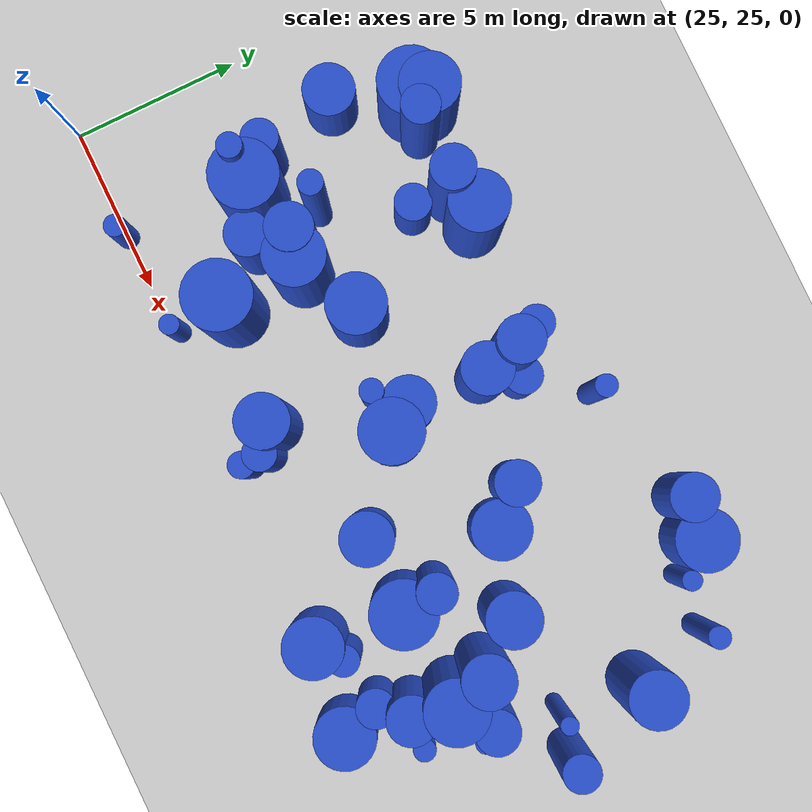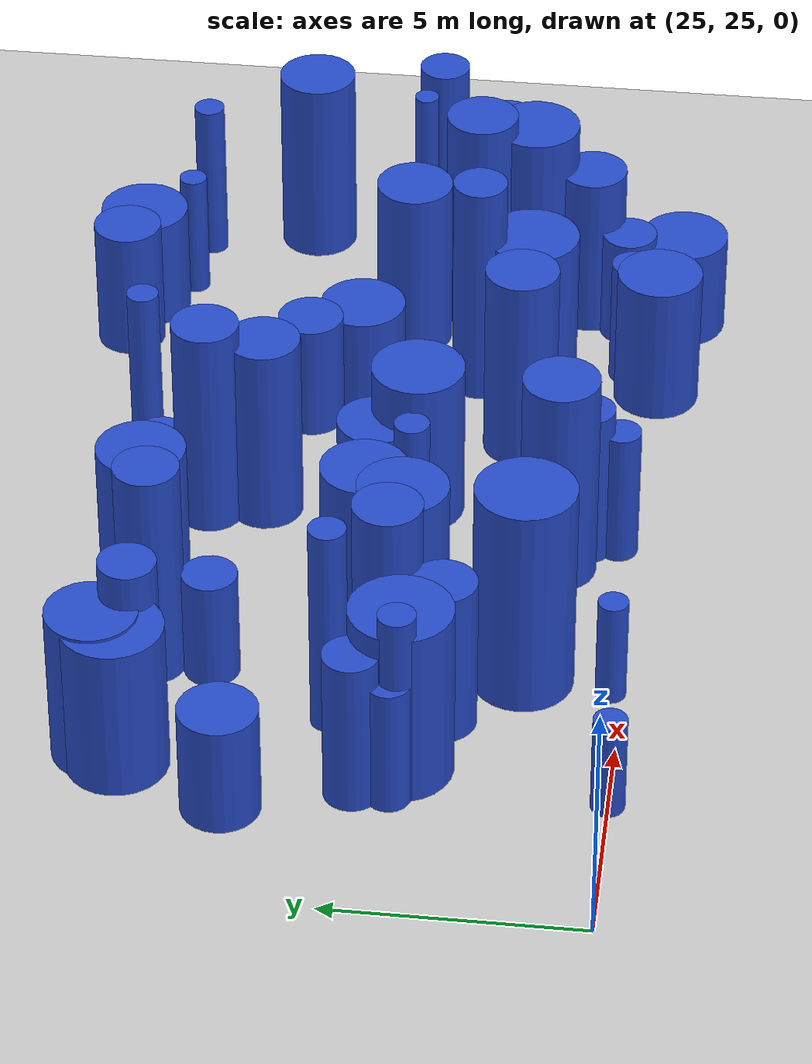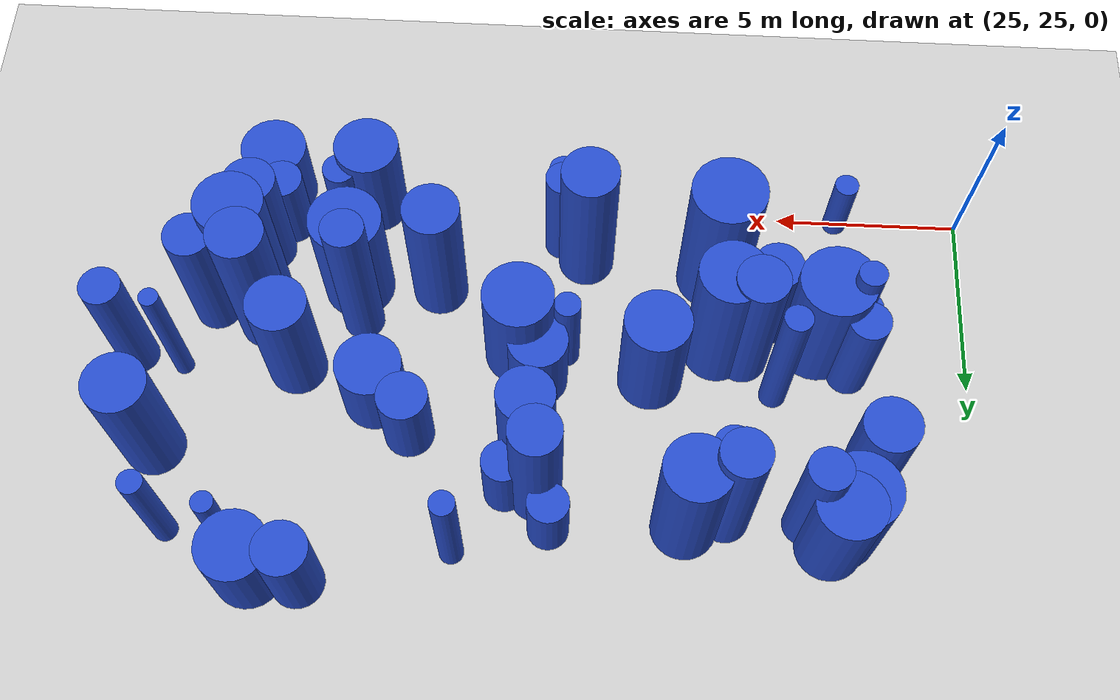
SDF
<sdf version="1.6">
 <world name="default">
  <model name="ground_plane">
   <static>1</static>
   <link name="link">
    <collision name="collision">
     <geometry><plane><normal>0 0 1</normal><size>100 100</size></plane></geometry>
     <surface><friction><ode><mu>100</mu><mu2>50</mu2></ode></friction></surface>
    </collision>
    <visual name="visual">
     <cast_shadows>0</cast_shadows>
     <geometry><plane><normal>0 0 1</normal><size>100 100</size></plane></geometry>
     <material>
      <script><uri>file://media/materials/scripts/gazebo.material</uri><name>Gazebo/Grey</name></script>
     </material>
    </visual>
   </link>
  </model>
  <model name="1">
   <static>0</static>
   <link name="link">
    <inertial>
     <mass>2</mass>
     <inertia><ixx>1.42291</ixx><ixy>0</ixy><ixz>0</ixz><iyy>1.42291</iyy><iyz>0</iyz><izz>0.128584</izz></inertia>
    </inertial>
    <collision name="collision">
     <geometry><cylinder><length>2.85512</length><radius>0.358586</radius></cylinder></geometry>
     <surface><contact><collide_without_contact>1</collide_without_contact></contact></surface>
    </collision>
    <visual name="visual">
     <geometry><cylinder><length>2.85512</length><radius>0.358586</radius></cylinder></geometry>
     <material>
      <script><uri>file://media/materials/scripts/gazebo.material</uri><name>Gazebo/Blue</name></script>
     </material>
    </visual>
    <gravity>0</gravity>
   </link>
   <pose>41.7752 27.9235 1.42756 0 -0 0</pose>
  </model>
  <model name="13">
   <static>0</static>
   <link name="link">
    <inertial>
     <mass>2</mass>
     <inertia><ixx>1.9703</ixx><ixy>0</ixy><ixz>0</ixz><iyy>1.9703</iyy><iyz>0</iyz><izz>0.2914</izz></inertia>
    </inertial>
    <collision name="collision">
     <geometry><cylinder><length>3.30871</length><radius>0.539815</radius></cylinder></geometry>
     <surface><contact><collide_without_contact>1</collide_without_contact></contact></surface>
    </collision>
    <visual name="visual">
     <geometry><cylinder><length>3.30871</length><radius>0.539815</radius></cylinder></geometry>
     <material>
      <script><uri>file://media/materials/scripts/gazebo.material</uri><name>Gazebo/Blue</name></script>
     </material>
    </visual>
    <gravity>0</gravity>
   </link>
   <pose>28.2282 29.745 1.65436 0 -0 0</pose>
  </model>
  <model name="20">
   <static>0</static>
   <link name="link">
    <inertial>
     <mass>2</mass>
     <inertia><ixx>2.14927</ixx><ixy>0</ixy><ixz>0</ixz><iyy>2.14927</iyy><iyz>0</iyz><izz>0.10024</izz></inertia>
    </inertial>
    <collision name="collision">
     <geometry><cylinder><length>3.54893</length><radius>0.316606</radius></cylinder></geometry>
     <surface><contact><collide_without_contact>1</collide_without_contact></contact></surface>
    </collision>
    <visual name="visual">
     <geometry><cylinder><length>3.54893</length><radius>0.316606</radius></cylinder></geometry>
     <material>
      <script><uri>file://media/materials/scripts/gazebo.material</uri><name>Gazebo/Blue</name></script>
     </material>
    </visual>
    <gravity>0</gravity>
   </link>
   <pose>45.8173 35.0316 1.77447 0 -0 0</pose>
  </model>
  <model name="21">
   <static>0</static>
   <link name="link">
    <inertial>
     <mass>2</mass>
     <inertia><ixx>2.07639</ixx><ixy>0</ixy><ixz>0</ixz><iyy>2.07639</iyy><iyz>0</iyz><izz>0.241004</izz></inertia>
    </inertial>
    <collision name="collision">
     <geometry><cylinder><length>3.42569</length><radius>0.490922</radius></cylinder></geometry>
     <surface><contact><collide_without_contact>1</collide_without_contact></contact></surface>
    </collision>
    <visual name="visual">
     <geometry><cylinder><length>3.42569</length><radius>0.490922</radius></cylinder></geometry>
     <material>
      <script><uri>file://media/materials/scripts/gazebo.material</uri><name>Gazebo/Blue</name></script>
     </material>
    </visual>
    <gravity>0</gravity>
   </link>
   <pose>36.0554 26.0454 1.71284 0 -0 0</pose>
  </model>
  <model name="32">
   <static>0</static>
   <link name="link">
    <inertial>
     <mass>2</mass>
     <inertia><ixx>4.32118</ixx><ixy>0</ixy><ixz>0</ixz><iyy>4.32118</iyy><iyz>0</iyz><izz>0.545109</izz></inertia>
    </inertial>
    <collision name="collision">
     <geometry><cylinder><length>4.92867</length><radius>0.738315</radius></cylinder></geometry>
     <surface><contact><collide_without_contact>1</collide_without_contact></contact></surface>
    </collision>
    <visual name="visual">
     <geometry><cylinder><length>4.92867</length><radius>0.738315</radius></cylinder></geometry>
     <material>
      <script><uri>file://media/materials/scripts/gazebo.material</uri><name>Gazebo/Blue</name></script>
     </material>
    </visual>
    <gravity>0</gravity>
   </link>
   <pose>43.9927 28.992 2.46433 0 -0 0</pose>
  </model>
  <model name="35">
   <static>0</static>
   <link name="link">
    <inertial>
     <mass>2</mass>
     <inertia>
      <ixx>1.30378</ixx>
      <ixy>0</ixy>
      <ixz>0</ixz>
      <iyy>1.30378</iyy>
      <iyz>0</iyz>
      <izz>0.0818979</izz>
     </inertia>
    </inertial>
    <collision name="collision">
     <geometry><cylinder><length>2.75264</length><radius>0.286178</radius></cylinder></geometry>
     <surface><contact><collide_without_contact>1</collide_without_contact></contact></surface>
    </collision>
    <visual name="visual">
     <geometry><cylinder><length>2.75264</length><radius>0.286178</radius></cylinder></geometry>
     <material>
      <script><uri>file://media/materials/scripts/gazebo.material</uri><name>Gazebo/Blue</name></script>
     </material>
    </visual>
    <gravity>0</gravity>
   </link>
   <pose>44.2744 35.1639 1.37632 0 -0 0</pose>
  </model>
  <model name="48">
   <static>0</static>
   <link name="link">
    <inertial>
     <mass>2</mass>
     <inertia><ixx>1.60895</ixx><ixy>0</ixy><ixz>0</ixz><iyy>1.60895</iyy><iyz>0</iyz><izz>0.100304</izz></inertia>
    </inertial>
    <collision name="collision">
     <geometry><cylinder><length>3.05823</length><radius>0.316709</radius></cylinder></geometry>
     <surface><contact><collide_without_contact>1</collide_without_contact></contact></surface>
    </collision>
    <visual name="visual">
     <geometry><cylinder><length>3.05823</length><radius>0.316709</radius></cylinder></geometry>
     <material>
      <script><uri>file://media/materials/scripts/gazebo.material</uri><name>Gazebo/Blue</name></script>
     </material>
    </visual>
    <gravity>0</gravity>
   </link>
   <pose>45.1707 26.6144 1.52911 0 -0 0</pose>
  </model>
  <model name="53">
   <static>0</static>
   <link name="link">
    <inertial>
     <mass>2</mass>
     <inertia><ixx>3.78116</ixx><ixy>0</ixy><ixz>0</ixz><iyy>3.78116</iyy><iyz>0</iyz><izz>0.58004</izz></inertia>
    </inertial>
    <collision name="collision">
     <geometry><cylinder><length>4.57677</length><radius>0.761604</radius></cylinder></geometry>
     <surface><contact><collide_without_contact>1</collide_without_contact></contact></surface>
    </collision>
    <visual name="visual">
     <geometry><cylinder><length>4.57677</length><radius>0.761604</radius></cylinder></geometry>
     <material>
      <script><uri>file://media/materials/scripts/gazebo.material</uri><name>Gazebo/Blue</name></script>
     </material>
    </visual>
    <gravity>0</gravity>
   </link>
   <pose>35.376 26.5708 2.28839 0 -0 0</pose>
  </model>
  <model name="63">
   <static>0</static>
   <link name="link">
    <inertial>
     <mass>2</mass>
     <inertia><ixx>3.52604</ixx><ixy>0</ixy><ixz>0</ixz><iyy>3.52604</iyy><iyz>0</iyz><izz>0.741918</izz></inertia>
    </inertial>
    <collision name="collision">
     <geometry><cylinder><length>4.35092</length><radius>0.861346</radius></cylinder></geometry>
     <surface><contact><collide_without_contact>1</collide_without_contact></contact></surface>
    </collision>
    <visual name="visual">
     <geometry><cylinder><length>4.35092</length><radius>0.861346</radius></cylinder></geometry>
     <material>
      <script><uri>file://media/materials/scripts/gazebo.material</uri><name>Gazebo/Blue</name></script>
     </material>
    </visual>
    <gravity>0</gravity>
   </link>
   <pose>32.5729 34.2745 2.17546 0 -0 0</pose>
  </model>
  <model name="76">
   <static>0</static>
   <link name="link">
    <inertial>
     <mass>2</mass>
     <inertia><ixx>2.90704</ixx><ixy>0</ixy><ixz>0</ixz><iyy>2.90704</iyy><iyz>0</iyz><izz>0.308433</izz></inertia>
    </inertial>
    <collision name="collision">
     <geometry><cylinder><length>4.0641</length><radius>0.555368</radius></cylinder></geometry>
     <surface><contact><collide_without_contact>1</collide_without_contact></contact></surface>
    </collision>
    <visual name="visual">
     <geometry><cylinder><length>4.0641</length><radius>0.555368</radius></cylinder></geometry>
     <material>
      <script><uri>file://media/materials/scripts/gazebo.material</uri><name>Gazebo/Blue</name></script>
     </material>
    </visual>
    <gravity>0</gravity>
   </link>
   <pose>29.4935 34.03 2.03205 0 -0 0</pose>
  </model>
  <model name="79">
   <static>0</static>
   <link name="link">
    <inertial>
     <mass>2</mass>
     <inertia><ixx>1.49288</ixx><ixy>0</ixy><ixz>0</ixz><iyy>1.49288</iyy><iyz>0</iyz><izz>0.148529</izz></inertia>
    </inertial>
    <collision name="collision">
     <geometry><cylinder><length>2.91748</length><radius>0.385395</radius></cylinder></geometry>
     <surface><contact><collide_without_contact>1</collide_without_contact></contact></surface>
    </collision>
    <visual name="visual">
     <geometry><cylinder><length>2.91748</length><radius>0.385395</radius></cylinder></geometry>
     <material>
      <script><uri>file://media/materials/scripts/gazebo.material</uri><name>Gazebo/Blue</name></script>
     </material>
    </visual>
    <gravity>0</gravity>
   </link>
   <pose>36.0862 25.4242 1.45874 0 -0 0</pose>
  </model>
  <model name="80">
   <static>0</static>
   <link name="link">
    <inertial>
     <mass>2</mass>
     <inertia><ixx>3.80086</ixx><ixy>0</ixy><ixz>0</ixz><iyy>3.80086</iyy><iyz>0</iyz><izz>0.77804</izz></inertia>
    </inertial>
    <collision name="collision">
     <geometry><cylinder><length>4.52449</length><radius>0.882066</radius></cylinder></geometry>
     <surface><contact><collide_without_contact>1</collide_without_contact></contact></surface>
    </collision>
    <visual name="visual">
     <geometry><cylinder><length>4.52449</length><radius>0.882066</radius></cylinder></geometry>
     <material>
      <script><uri>file://media/materials/scripts/gazebo.material</uri><name>Gazebo/Blue</name></script>
     </material>
    </visual>
    <gravity>0</gravity>
   </link>
   <pose>31.7605 29.2102 2.26225 0 -0 0</pose>
  </model>
  <model name="87">
   <static>0</static>
   <link name="link">
    <inertial>
     <mass>2</mass>
     <inertia><ixx>1.2223</ixx><ixy>0</ixy><ixz>0</ixz><iyy>1.2223</iyy><iyz>0</iyz><izz>0.801071</izz></inertia>
    </inertial>
    <collision name="collision">
     <geometry><cylinder><length>2.2205</length><radius>0.895026</radius></cylinder></geometry>
     <surface><contact><collide_without_contact>1</collide_without_contact></contact></surface>
    </collision>
    <visual name="visual">
     <geometry><cylinder><length>2.2205</length><radius>0.895026</radius></cylinder></geometry>
     <material>
      <script><uri>file://media/materials/scripts/gazebo.material</uri><name>Gazebo/Blue</name></script>
     </material>
    </visual>
    <gravity>0</gravity>
   </link>
   <pose>44.0898 24.707 1.11025 0 -0 0</pose>
  </model>
  <model name="91">
   <static>0</static>
   <link name="link">
    <inertial>
     <mass>2</mass>
     <inertia>
      <ixx>0.882223</ixx>
      <ixy>0</ixy>
      <ixz>0</ixz>
      <iyy>0.882223</iyy>
      <iyz>0</iyz>
      <izz>0.0874614</izz>
     </inertia>
    </inertial>
    <collision name="collision">
     <geometry><cylinder><length>2.24298</length><radius>0.295739</radius></cylinder></geometry>
     <surface><contact><collide_without_contact>1</collide_without_contact></contact></surface>
    </collision>
    <visual name="visual">
     <geometry><cylinder><length>2.24298</length><radius>0.295739</radius></cylinder></geometry>
     <material>
      <script><uri>file://media/materials/scripts/gazebo.material</uri><name>Gazebo/Blue</name></script>
     </material>
    </visual>
    <gravity>0</gravity>
   </link>
   <pose>31.6263 25.2196 1.12149 0 -0 0</pose>
  </model>
  <model name="96">
   <static>0</static>
   <link name="link">
    <inertial>
     <mass>2</mass>
     <inertia><ixx>2.87652</ixx><ixy>0</ixy><ixz>0</ixz><iyy>2.87652</iyy><iyz>0</iyz><izz>0.99004</izz></inertia>
    </inertial>
    <collision name="collision">
     <geometry><cylinder><length>3.78008</length><radius>0.995008</radius></cylinder></geometry>
     <surface><contact><collide_without_contact>1</collide_without_contact></contact></surface>
    </collision>
    <visual name="visual">
     <geometry><cylinder><length>3.78008</length><radius>0.995008</radius></cylinder></geometry>
     <material>
      <script><uri>file://media/materials/scripts/gazebo.material</uri><name>Gazebo/Blue</name></script>
     </material>
    </visual>
    <gravity>0</gravity>
   </link>
   <pose>29.0539 28.9243 1.89004 0 -0 0</pose>
  </model>
  <model name="104">
   <static>0</static>
   <link name="link">
    <inertial>
     <mass>2</mass>
     <inertia><ixx>3.9165</ixx><ixy>0</ixy><ixz>0</ixz><iyy>3.9165</iyy><iyz>0</iyz><izz>0.40346</izz></inertia>
    </inertial>
    <collision name="collision">
     <geometry><cylinder><length>4.72108</length><radius>0.635185</radius></cylinder></geometry>
     <surface><contact><collide_without_contact>1</collide_without_contact></contact></surface>
    </collision>
    <visual name="visual">
     <geometry><cylinder><length>4.72108</length><radius>0.635185</radius></cylinder></geometry>
     <material>
      <script><uri>file://media/materials/scripts/gazebo.material</uri><name>Gazebo/Blue</name></script>
     </material>
    </visual>
    <gravity>0</gravity>
   </link>
   <pose>31.5272 33.9944 2.36054 0 -0 0</pose>
  </model>
  <model name="117">
   <static>0</static>
   <link name="link">
    <inertial>
     <mass>2</mass>
     <inertia><ixx>3.83077</ixx><ixy>0</ixy><ixz>0</ixz><iyy>3.83077</iyy><iyz>0</iyz><izz>0.816156</izz></inertia>
    </inertial>
    <collision name="collision">
     <geometry><cylinder><length>4.53168</length><radius>0.903414</radius></cylinder></geometry>
     <surface><contact><collide_without_contact>1</collide_without_contact></contact></surface>
    </collision>
    <visual name="visual">
     <geometry><cylinder><length>4.53168</length><radius>0.903414</radius></cylinder></geometry>
     <material>
      <script><uri>file://media/materials/scripts/gazebo.material</uri><name>Gazebo/Blue</name></script>
     </material>
    </visual>
    <gravity>0</gravity>
   </link>
   <pose>44.4012 27.9009 2.26584 0 -0 0</pose>
  </model>
  <model name="138">
   <static>0</static>
   <link name="link">
    <inertial>
     <mass>2</mass>
     <inertia><ixx>3.16834</ixx><ixy>0</ixy><ixz>0</ixz><iyy>3.16834</iyy><iyz>0</iyz><izz>0.64621</izz></inertia>
    </inertial>
    <collision name="collision">
     <geometry><cylinder><length>4.13176</length><radius>0.803872</radius></cylinder></geometry>
     <surface><contact><collide_without_contact>1</collide_without_contact></contact></surface>
    </collision>
    <visual name="visual">
     <geometry><cylinder><length>4.13176</length><radius>0.803872</radius></cylinder></geometry>
     <material>
      <script><uri>file://media/materials/scripts/gazebo.material</uri><name>Gazebo/Blue</name></script>
     </material>
    </visual>
    <gravity>0</gravity>
   </link>
   <pose>46.4667 32.7789 2.06588 0 -0 0</pose>
  </model>
  <model name="140">
   <static>0</static>
   <link name="link">
    <inertial>
     <mass>2</mass>
     <inertia><ixx>3.96038</ixx><ixy>0</ixy><ixz>0</ixz><iyy>3.96038</iyy><iyz>0</iyz><izz>0.962462</izz></inertia>
    </inertial>
    <collision name="collision">
     <geometry><cylinder><length>4.5689</length><radius>0.981051</radius></cylinder></geometry>
     <surface><contact><collide_without_contact>1</collide_without_contact></contact></surface>
    </collision>
    <visual name="visual">
     <geometry><cylinder><length>4.5689</length><radius>0.981051</radius></cylinder></geometry>
     <material>
      <script><uri>file://media/materials/scripts/gazebo.material</uri><name>Gazebo/Blue</name></script>
     </material>
    </visual>
    <gravity>0</gravity>
   </link>
   <pose>31.8637 26.9192 2.28445 0 -0 0</pose>
  </model>
  <model name="162">
   <static>0</static>
   <link name="link">
    <inertial>
     <mass>2</mass>
     <inertia><ixx>2.49064</ixx><ixy>0</ixy><ixz>0</ixz><iyy>2.49064</iyy><iyz>0</iyz><izz>0.753027</izz></inertia>
    </inertial>
    <collision name="collision">
     <geometry><cylinder><length>3.56157</length><radius>0.867771</radius></cylinder></geometry>
     <surface><contact><collide_without_contact>1</collide_without_contact></contact></surface>
    </collision>
    <visual name="visual">
     <geometry><cylinder><length>3.56157</length><radius>0.867771</radius></cylinder></geometry>
     <material>
      <script><uri>file://media/materials/scripts/gazebo.material</uri><name>Gazebo/Blue</name></script>
     </material>
    </visual>
    <gravity>0</gravity>
   </link>
   <pose>33.5253 30.1542 1.78078 0 -0 0</pose>
  </model>
  <model name="181">
   <static>0</static>
   <link name="link">
    <inertial>
     <mass>2</mass>
     <inertia><ixx>1.37707</ixx><ixy>0</ixy><ixz>0</ixz><iyy>1.37707</iyy><iyz>0</iyz><izz>0.203434</izz></inertia>
    </inertial>
    <collision name="collision">
     <geometry><cylinder><length>2.76625</length><radius>0.451036</radius></cylinder></geometry>
     <surface><contact><collide_without_contact>1</collide_without_contact></contact></surface>
    </collision>
    <visual name="visual">
     <geometry><cylinder><length>2.76625</length><radius>0.451036</radius></cylinder></geometry>
     <material>
      <script><uri>file://media/materials/scripts/gazebo.material</uri><name>Gazebo/Blue</name></script>
     </material>
    </visual>
    <gravity>0</gravity>
   </link>
   <pose>42.1011 25.6486 1.38312 0 -0 0</pose>
  </model>
  <model name="194">
   <static>0</static>
   <link name="link">
    <inertial>
     <mass>2</mass>
     <inertia><ixx>1.04865</ixx><ixy>0</ixy><ixz>0</ixz><iyy>1.04865</iyy><iyz>0</iyz><izz>0.294135</izz></inertia>
    </inertial>
    <collision name="collision">
     <geometry><cylinder><length>2.32583</length><radius>0.542342</radius></cylinder></geometry>
     <surface><contact><collide_without_contact>1</collide_without_contact></contact></surface>
    </collision>
    <visual name="visual">
     <geometry><cylinder><length>2.32583</length><radius>0.542342</radius></cylinder></geometry>
     <material>
      <script><uri>file://media/materials/scripts/gazebo.material</uri><name>Gazebo/Blue</name></script>
     </material>
    </visual>
    <gravity>0</gravity>
   </link>
   <pose>31.4851 32.8556 1.16291 0 -0 0</pose>
  </model>
  <model name="218">
   <static>0</static>
   <link name="link">
    <inertial>
     <mass>2</mass>
     <inertia><ixx>2.39991</ixx><ixy>0</ixy><ixz>0</ixz><iyy>2.39991</iyy><iyz>0</iyz><izz>0.867982</izz></inertia>
    </inertial>
    <collision name="collision">
     <geometry><cylinder><length>3.43446</length><radius>0.931655</radius></cylinder></geometry>
     <surface><contact><collide_without_contact>1</collide_without_contact></contact></surface>
    </collision>
    <visual name="visual">
     <geometry><cylinder><length>3.43446</length><radius>0.931655</radius></cylinder></geometry>
     <material>
      <script><uri>file://media/materials/scripts/gazebo.material</uri><name>Gazebo/Blue</name></script>
     </material>
    </visual>
    <gravity>0</gravity>
   </link>
   <pose>37.0542 29.5337 1.71723 0 -0 0</pose>
  </model>
  <model name="223">
   <static>0</static>
   <link name="link">
    <inertial>
     <mass>2</mass>
     <inertia><ixx>1.28319</ixx><ixy>0</ixy><ixz>0</ixz><iyy>1.28319</iyy><iyz>0</iyz><izz>0.441798</izz></inertia>
    </inertial>
    <collision name="collision">
     <geometry><cylinder><length>2.52463</length><radius>0.664679</radius></cylinder></geometry>
     <surface><contact><collide_without_contact>1</collide_without_contact></contact></surface>
    </collision>
    <visual name="visual">
     <geometry><cylinder><length>2.52463</length><radius>0.664679</radius></cylinder></geometry>
     <material>
      <script><uri>file://media/materials/scripts/gazebo.material</uri><name>Gazebo/Blue</name></script>
     </material>
    </visual>
    <gravity>0</gravity>
   </link>
   <pose>39.8236 32.0498 1.26231 0 -0 0</pose>
  </model>
  <model name="238">
   <static>0</static>
   <link name="link">
    <inertial>
     <mass>2</mass>
     <inertia><ixx>2.72336</ixx><ixy>0</ixy><ixz>0</ixz><iyy>2.72336</iyy><iyz>0</iyz><izz>0.618227</izz></inertia>
    </inertial>
    <collision name="collision">
     <geometry><cylinder><length>3.80598</length><radius>0.786274</radius></cylinder></geometry>
     <surface><contact><collide_without_contact>1</collide_without_contact></contact></surface>
    </collision>
    <visual name="visual">
     <geometry><cylinder><length>3.80598</length><radius>0.786274</radius></cylinder></geometry>
     <material>
      <script><uri>file://media/materials/scripts/gazebo.material</uri><name>Gazebo/Blue</name></script>
     </material>
    </visual>
    <gravity>0</gravity>
   </link>
   <pose>42.9998 30.2881 1.90299 0 -0 0</pose>
  </model>
  <model name="251">
   <static>0</static>
   <link name="link">
    <inertial>
     <mass>2</mass>
     <inertia><ixx>2.6794</ixx><ixy>0</ixy><ixz>0</ixz><iyy>2.6794</iyy><iyz>0</iyz><izz>0.0639411</izz></inertia>
    </inertial>
    <collision name="collision">
     <geometry><cylinder><length>3.98554</length><radius>0.252866</radius></cylinder></geometry>
     <surface><contact><collide_without_contact>1</collide_without_contact></contact></surface>
    </collision>
    <visual name="visual">
     <geometry><cylinder><length>3.98554</length><radius>0.252866</radius></cylinder></geometry>
     <material>
      <script><uri>file://media/materials/scripts/gazebo.material</uri><name>Gazebo/Blue</name></script>
     </material>
    </visual>
    <gravity>0</gravity>
   </link>
   <pose>46.0882 30.3887 1.99277 0 -0 0</pose>
  </model>
  <model name="254">
   <static>0</static>
   <link name="link">
    <inertial>
     <mass>2</mass>
     <inertia><ixx>1.22697</ixx><ixy>0</ixy><ixz>0</ixz><iyy>1.22697</iyy><iyz>0</iyz><izz>0.761228</izz></inertia>
    </inertial>
    <collision name="collision">
     <geometry><cylinder><length>2.25348</length><radius>0.872484</radius></cylinder></geometry>
     <surface><contact><collide_without_contact>1</collide_without_contact></contact></surface>
    </collision>
    <visual name="visual">
     <geometry><cylinder><length>2.25348</length><radius>0.872484</radius></cylinder></geometry>
     <material>
      <script><uri>file://media/materials/scripts/gazebo.material</uri><name>Gazebo/Blue</name></script>
     </material>
    </visual>
    <gravity>0</gravity>
   </link>
   <pose>40.8019 31.107 1.12674 0 -0 0</pose>
  </model>
  <model name="266">
   <static>0</static>
   <link name="link">
    <inertial>
     <mass>2</mass>
     <inertia><ixx>1.57399</ixx><ixy>0</ixy><ixz>0</ixz><iyy>1.57399</iyy><iyz>0</iyz><izz>0.484776</izz></inertia>
    </inertial>
    <collision name="collision">
     <geometry><cylinder><length>2.82659</length><radius>0.696258</radius></cylinder></geometry>
     <surface><contact><collide_without_contact>1</collide_without_contact></contact></surface>
    </collision>
    <visual name="visual">
     <geometry><cylinder><length>2.82659</length><radius>0.696258</radius></cylinder></geometry>
     <material>
      <script><uri>file://media/materials/scripts/gazebo.material</uri><name>Gazebo/Blue</name></script>
     </material>
    </visual>
    <gravity>0</gravity>
   </link>
   <pose>42.2595 36.2268 1.4133 0 -0 0</pose>
  </model>
  <model name="270">
   <static>0</static>
   <link name="link">
    <inertial>
     <mass>2</mass>
     <inertia><ixx>3.37916</ixx><ixy>0</ixy><ixz>0</ixz><iyy>3.37916</iyy><iyz>0</iyz><izz>0.558318</izz></inertia>
    </inertial>
    <collision name="collision">
     <geometry><cylinder><length>4.31277</length><radius>0.747207</radius></cylinder></geometry>
     <surface><contact><collide_without_contact>1</collide_without_contact></contact></surface>
    </collision>
    <visual name="visual">
     <geometry><cylinder><length>4.31277</length><radius>0.747207</radius></cylinder></geometry>
     <material>
      <script><uri>file://media/materials/scripts/gazebo.material</uri><name>Gazebo/Blue</name></script>
     </material>
    </visual>
    <gravity>0</gravity>
   </link>
   <pose>39.3538 27.7074 2.15639 0 -0 0</pose>
  </model>
  <model name="276">
   <static>0</static>
   <link name="link">
    <inertial>
     <mass>2</mass>
     <inertia><ixx>1.32233</ixx><ixy>0</ixy><ixz>0</ixz><iyy>1.32233</iyy><iyz>0</iyz><izz>0.625833</izz></inertia>
    </inertial>
    <collision name="collision">
     <geometry><cylinder><length>2.46099</length><radius>0.791096</radius></cylinder></geometry>
     <surface><contact><collide_without_contact>1</collide_without_contact></contact></surface>
    </collision>
    <visual name="visual">
     <geometry><cylinder><length>2.46099</length><radius>0.791096</radius></cylinder></geometry>
     <material>
      <script><uri>file://media/materials/scripts/gazebo.material</uri><name>Gazebo/Blue</name></script>
     </material>
    </visual>
    <gravity>0</gravity>
   </link>
   <pose>36.5195 30.2984 1.2305 0 -0 0</pose>
  </model>
  <model name="284">
   <static>0</static>
   <link name="link">
    <inertial>
     <mass>2</mass>
     <inertia>
      <ixx>0.997187</ixx>
      <ixy>0</ixy>
      <ixz>0</ixz>
      <iyy>0.997187</iyy>
      <iyz>0</iyz>
      <izz>0.303162</izz>
     </inertia>
    </inertial>
    <collision name="collision">
     <geometry><cylinder><length>2.25247</length><radius>0.550601</radius></cylinder></geometry>
     <surface><contact><collide_without_contact>1</collide_without_contact></contact></surface>
    </collision>
    <visual name="visual">
     <geometry><cylinder><length>2.25247</length><radius>0.550601</radius></cylinder></geometry>
     <material>
      <script><uri>file://media/materials/scripts/gazebo.material</uri><name>Gazebo/Blue</name></script>
     </material>
    </visual>
    <gravity>0</gravity>
   </link>
   <pose>37.2065 33.5429 1.12624 0 -0 0</pose>
  </model>
  <model name="313">
   <static>0</static>
   <link name="link">
    <inertial>
     <mass>2</mass>
     <inertia>
      <ixx>0.780289</ixx>
      <ixy>0</ixy>
      <ixz>0</ixz>
      <iyy>0.780289</iyy>
      <iyz>0</iyz>
      <izz>0.105517</izz>
     </inertia>
    </inertial>
    <collision name="collision">
     <geometry><cylinder><length>2.0893</length><radius>0.324834</radius></cylinder></geometry>
     <surface><contact><collide_without_contact>1</collide_without_contact></contact></surface>
    </collision>
    <visual name="visual">
     <geometry><cylinder><length>2.0893</length><radius>0.324834</radius></cylinder></geometry>
     <material>
      <script><uri>file://media/materials/scripts/gazebo.material</uri><name>Gazebo/Blue</name></script>
     </material>
    </visual>
    <gravity>0</gravity>
   </link>
   <pose>28.4006 25.0125 1.04465 0 -0 0</pose>
  </model>
  <model name="319">
   <static>0</static>
   <link name="link">
    <inertial>
     <mass>2</mass>
     <inertia><ixx>2.67204</ixx><ixy>0</ixy><ixz>0</ixz><iyy>2.67204</iyy><iyz>0</iyz><izz>0.928196</izz></inertia>
    </inertial>
    <collision name="collision">
     <geometry><cylinder><length>3.63973</length><radius>0.963429</radius></cylinder></geometry>
     <surface><contact><collide_without_contact>1</collide_without_contact></contact></surface>
    </collision>
    <visual name="visual">
     <geometry><cylinder><length>3.63973</length><radius>0.963429</radius></cylinder></geometry>
     <material>
      <script><uri>file://media/materials/scripts/gazebo.material</uri><name>Gazebo/Blue</name></script>
     </material>
    </visual>
    <gravity>0</gravity>
   </link>
   <pose>41.6114 27.7107 1.81987 0 -0 0</pose>
  </model>
  <model name="336">
   <static>0</static>
   <link name="link">
    <inertial>
     <mass>2</mass>
     <inertia><ixx>2.08136</ixx><ixy>0</ixy><ixz>0</ixz><iyy>2.08136</iyy><iyz>0</iyz><izz>0.426781</izz></inertia>
    </inertial>
    <collision name="collision">
     <geometry><cylinder><length>3.34781</length><radius>0.653285</radius></cylinder></geometry>
     <surface><contact><collide_without_contact>1</collide_without_contact></contact></surface>
    </collision>
    <visual name="visual">
     <geometry><cylinder><length>3.34781</length><radius>0.653285</radius></cylinder></geometry>
     <material>
      <script><uri>file://media/materials/scripts/gazebo.material</uri><name>Gazebo/Blue</name></script>
     </material>
    </visual>
    <gravity>0</gravity>
   </link>
   <pose>30.4804 28.3062 1.6739 0 -0 0</pose>
  </model>
  <model name="339">
   <static>0</static>
   <link name="link">
    <inertial>
     <mass>2</mass>
     <inertia><ixx>3.55486</ixx><ixy>0</ixy><ixz>0</ixz><iyy>3.55486</iyy><iyz>0</iyz><izz>0.131223</izz></inertia>
    </inertial>
    <collision name="collision">
     <geometry><cylinder><length>4.57553</length><radius>0.362248</radius></cylinder></geometry>
     <surface><contact><collide_without_contact>1</collide_without_contact></contact></surface>
    </collision>
    <visual name="visual">
     <geometry><cylinder><length>4.57553</length><radius>0.362248</radius></cylinder></geometry>
     <material>
      <script><uri>file://media/materials/scripts/gazebo.material</uri><name>Gazebo/Blue</name></script>
     </material>
    </visual>
    <gravity>0</gravity>
   </link>
   <pose>30.2351 30.4272 2.28777 0 -0 0</pose>
  </model>
  <model name="341">
   <static>0</static>
   <link name="link">
    <inertial>
     <mass>2</mass>
     <inertia>
      <ixx>1.93809</ixx>
      <ixy>0</ixy>
      <ixz>0</ixz>
      <iyy>1.93809</iyy>
      <iyz>0</iyz>
      <izz>0.0837407</izz>
     </inertia>
    </inertial>
    <collision name="collision">
     <geometry><cylinder><length>3.37303</length><radius>0.28938</radius></cylinder></geometry>
     <surface><contact><collide_without_contact>1</collide_without_contact></contact></surface>
    </collision>
    <visual name="visual">
     <geometry><cylinder><length>3.37303</length><radius>0.28938</radius></cylinder></geometry>
     <material>
      <script><uri>file://media/materials/scripts/gazebo.material</uri><name>Gazebo/Blue</name></script>
     </material>
    </visual>
    <gravity>0</gravity>
   </link>
   <pose>45.6569 28.1916 1.68651 0 -0 0</pose>
  </model>
  <model name="342">
   <static>0</static>
   <link name="link">
    <inertial>
     <mass>2</mass>
     <inertia><ixx>1.16149</ixx><ixy>0</ixy><ixz>0</ixz><iyy>1.16149</iyy><iyz>0</iyz><izz>0.322356</izz></inertia>
    </inertial>
    <collision name="collision">
     <geometry><cylinder><length>2.44987</length><radius>0.567764</radius></cylinder></geometry>
     <surface><contact><collide_without_contact>1</collide_without_contact></contact></surface>
    </collision>
    <visual name="visual">
     <geometry><cylinder><length>2.44987</length><radius>0.567764</radius></cylinder></geometry>
     <material>
      <script><uri>file://media/materials/scripts/gazebo.material</uri><name>Gazebo/Blue</name></script>
     </material>
    </visual>
    <gravity>0</gravity>
   </link>
   <pose>43.6926 25.8482 1.22494 0 -0 0</pose>
  </model>
  <model name="362">
   <static>0</static>
   <link name="link">
    <inertial>
     <mass>2</mass>
     <inertia><ixx>2.27126</ixx><ixy>0</ixy><ixz>0</ixz><iyy>2.27126</iyy><iyz>0</iyz><izz>0.977194</izz></inertia>
    </inertial>
    <collision name="collision">
     <geometry><cylinder><length>3.27047</length><radius>0.988531</radius></cylinder></geometry>
     <surface><contact><collide_without_contact>1</collide_without_contact></contact></surface>
    </collision>
    <visual name="visual">
     <geometry><cylinder><length>3.27047</length><radius>0.988531</radius></cylinder></geometry>
     <material>
      <script><uri>file://media/materials/scripts/gazebo.material</uri><name>Gazebo/Blue</name></script>
     </material>
    </visual>
    <gravity>0</gravity>
   </link>
   <pose>28.5962 34.2013 1.63524 0 -0 0</pose>
  </model>
  <model name="370">
   <static>0</static>
   <link name="link">
    <inertial>
     <mass>2</mass>
     <inertia>
      <ixx>0.902121</ixx>
      <ixy>0</ixy>
      <ixz>0</ixz>
      <iyy>0.902121</iyy>
      <iyz>0</iyz>
      <izz>0.290618</izz>
     </inertia>
    </inertial>
    <collision name="collision">
     <geometry><cylinder><length>2.13093</length><radius>0.53909</radius></cylinder></geometry>
     <surface><contact><collide_without_contact>1</collide_without_contact></contact></surface>
    </collision>
    <visual name="visual">
     <geometry><cylinder><length>2.13093</length><radius>0.53909</radius></cylinder></geometry>
     <material>
      <script><uri>file://media/materials/scripts/gazebo.material</uri><name>Gazebo/Blue</name></script>
     </material>
    </visual>
    <gravity>0</gravity>
   </link>
   <pose>36.0348 34.5198 1.06547 0 -0 0</pose>
  </model>
  <model name="377">
   <static>0</static>
   <link name="link">
    <inertial>
     <mass>2</mass>
     <inertia><ixx>3.11682</ixx><ixy>0</ixy><ixz>0</ixz><iyy>3.11682</iyy><iyz>0</iyz><izz>0.546675</izz></inertia>
    </inertial>
    <collision name="collision">
     <geometry><cylinder><length>4.13049</length><radius>0.739374</radius></cylinder></geometry>
     <surface><contact><collide_without_contact>1</collide_without_contact></contact></surface>
    </collision>
    <visual name="visual">
     <geometry><cylinder><length>4.13049</length><radius>0.739374</radius></cylinder></geometry>
     <material>
      <script><uri>file://media/materials/scripts/gazebo.material</uri><name>Gazebo/Blue</name></script>
     </material>
    </visual>
    <gravity>0</gravity>
   </link>
   <pose>36.6751 32.547 2.06524 0 -0 0</pose>
  </model>
  <model name="379">
   <static>0</static>
   <link name="link">
    <inertial>
     <mass>2</mass>
     <inertia><ixx>2.91862</ixx><ixy>0</ixy><ixz>0</ixz><iyy>2.91862</iyy><iyz>0</iyz><izz>0.393126</izz></inertia>
    </inertial>
    <collision name="collision">
     <geometry><cylinder><length>4.04133</length><radius>0.626998</radius></cylinder></geometry>
     <surface><contact><collide_without_contact>1</collide_without_contact></contact></surface>
    </collision>
    <visual name="visual">
     <geometry><cylinder><length>4.04133</length><radius>0.626998</radius></cylinder></geometry>
     <material>
      <script><uri>file://media/materials/scripts/gazebo.material</uri><name>Gazebo/Blue</name></script>
     </material>
    </visual>
    <gravity>0</gravity>
   </link>
   <pose>45.4203 28.6109 2.02066 0 -0 0</pose>
  </model>
  <model name="383">
   <static>0</static>
   <link name="link">
    <inertial>
     <mass>2</mass>
     <inertia><ixx>3.04236</ixx><ixy>0</ixy><ixz>0</ixz><iyy>3.04236</iyy><iyz>0</iyz><izz>0.131297</izz></inertia>
    </inertial>
    <collision name="collision">
     <geometry><cylinder><length>4.22614</length><radius>0.36235</radius></cylinder></geometry>
     <surface><contact><collide_without_contact>1</collide_without_contact></contact></surface>
    </collision>
    <visual name="visual">
     <geometry><cylinder><length>4.22614</length><radius>0.36235</radius></cylinder></geometry>
     <material>
      <script><uri>file://media/materials/scripts/gazebo.material</uri><name>Gazebo/Blue</name></script>
     </material>
    </visual>
    <gravity>0</gravity>
   </link>
   <pose>28.3145 28.9138 2.11307 0 -0 0</pose>
  </model>
  <model name="392">
   <static>0</static>
   <link name="link">
    <inertial>
     <mass>2</mass>
     <inertia><ixx>2.41266</ixx><ixy>0</ixy><ixz>0</ixz><iyy>2.41266</iyy><iyz>0</iyz><izz>0.103825</izz></inertia>
    </inertial>
    <collision name="collision">
     <geometry><cylinder><length>3.76357</length><radius>0.322218</radius></cylinder></geometry>
     <surface><contact><collide_without_contact>1</collide_without_contact></contact></surface>
    </collision>
    <visual name="visual">
     <geometry><cylinder><length>3.76357</length><radius>0.322218</radius></cylinder></geometry>
     <material>
      <script><uri>file://media/materials/scripts/gazebo.material</uri><name>Gazebo/Blue</name></script>
     </material>
    </visual>
    <gravity>0</gravity>
   </link>
   <pose>38.4556 35.2424 1.88179 0 -0 0</pose>
  </model>
  <model name="395">
   <static>0</static>
   <link name="link">
    <inertial>
     <mass>2</mass>
     <inertia><ixx>2.43289</ixx><ixy>0</ixy><ixz>0</ixz><iyy>2.43289</iyy><iyz>0</iyz><izz>0.489771</izz></inertia>
    </inertial>
    <collision name="collision">
     <geometry><cylinder><length>3.62327</length><radius>0.699837</radius></cylinder></geometry>
     <surface><contact><collide_without_contact>1</collide_without_contact></contact></surface>
    </collision>
    <visual name="visual">
     <geometry><cylinder><length>3.62327</length><radius>0.699837</radius></cylinder></geometry>
     <material>
      <script><uri>file://media/materials/scripts/gazebo.material</uri><name>Gazebo/Blue</name></script>
     </material>
    </visual>
    <gravity>0</gravity>
   </link>
   <pose>44.2288 26.6753 1.81163 0 -0 0</pose>
  </model>
  <model name="398">
   <static>0</static>
   <link name="link">
    <inertial>
     <mass>2</mass>
     <inertia><ixx>1.53519</ixx><ixy>0</ixy><ixz>0</ixz><iyy>1.53519</iyy><iyz>0</iyz><izz>0.124156</izz></inertia>
    </inertial>
    <collision name="collision">
     <geometry><cylinder><length>2.97299</length><radius>0.352358</radius></cylinder></geometry>
     <surface><contact><collide_without_contact>1</collide_without_contact></contact></surface>
    </collision>
    <visual name="visual">
     <geometry><cylinder><length>2.97299</length><radius>0.352358</radius></cylinder></geometry>
     <material>
      <script><uri>file://media/materials/scripts/gazebo.material</uri><name>Gazebo/Blue</name></script>
     </material>
    </visual>
    <gravity>0</gravity>
   </link>
   <pose>35.7998 29.5105 1.48649 0 -0 0</pose>
  </model>
  <model name="404">
   <static>0</static>
   <link name="link">
    <inertial>
     <mass>2</mass>
     <inertia><ixx>1.93027</ixx><ixy>0</ixy><ixz>0</ixz><iyy>1.93027</iyy><iyz>0</iyz><izz>0.757036</izz></inertia>
    </inertial>
    <collision name="collision">
     <geometry><cylinder><length>3.05131</length><radius>0.870078</radius></cylinder></geometry>
     <surface><contact><collide_without_contact>1</collide_without_contact></contact></surface>
    </collision>
    <visual name="visual">
     <geometry><cylinder><length>3.05131</length><radius>0.870078</radius></cylinder></geometry>
     <material>
      <script><uri>file://media/materials/scripts/gazebo.material</uri><name>Gazebo/Blue</name></script>
     </material>
    </visual>
    <gravity>0</gravity>
   </link>
   <pose>41.4106 25.0679 1.52566 0 -0 0</pose>
  </model>
  <model name="413">
   <static>0</static>
   <link name="link">
    <inertial>
     <mass>2</mass>
     <inertia><ixx>1.33509</ixx><ixy>0</ixy><ixz>0</ixz><iyy>1.33509</iyy><iyz>0</iyz><izz>0.176562</izz></inertia>
    </inertial>
    <collision name="collision">
     <geometry><cylinder><length>2.73511</length><radius>0.420192</radius></cylinder></geometry>
     <surface><contact><collide_without_contact>1</collide_without_contact></contact></surface>
    </collision>
    <visual name="visual">
     <geometry><cylinder><length>2.73511</length><radius>0.420192</radius></cylinder></geometry>
     <material>
      <script><uri>file://media/materials/scripts/gazebo.material</uri><name>Gazebo/Blue</name></script>
     </material>
    </visual>
    <gravity>0</gravity>
   </link>
   <pose>28.1669 29.0495 1.36755 0 -0 0</pose>
  </model>
  <model name="433">
   <static>0</static>
   <link name="link">
    <inertial>
     <mass>2</mass>
     <inertia><ixx>3.74385</ixx><ixy>0</ixy><ixz>0</ixz><iyy>3.74385</iyy><iyz>0</iyz><izz>0.450682</izz></inertia>
    </inertial>
    <collision name="collision">
     <geometry><cylinder><length>4.59468</length><radius>0.671328</radius></cylinder></geometry>
     <surface><contact><collide_without_contact>1</collide_without_contact></contact></surface>
    </collision>
    <visual name="visual">
     <geometry><cylinder><length>4.59468</length><radius>0.671328</radius></cylinder></geometry>
     <material>
      <script><uri>file://media/materials/scripts/gazebo.material</uri><name>Gazebo/Blue</name></script>
     </material>
    </visual>
    <gravity>0</gravity>
   </link>
   <pose>36.3864 33.6445 2.29734 0 -0 0</pose>
  </model>
  <model name="436">
   <static>0</static>
   <link name="link">
    <inertial>
     <mass>2</mass>
     <inertia><ixx>3.75539</ixx><ixy>0</ixy><ixz>0</ixz><iyy>3.75539</iyy><iyz>0</iyz><izz>0.459389</izz></inertia>
    </inertial>
    <collision name="collision">
     <geometry><cylinder><length>4.59937</length><radius>0.677783</radius></cylinder></geometry>
     <surface><contact><collide_without_contact>1</collide_without_contact></contact></surface>
    </collision>
    <visual name="visual">
     <geometry><cylinder><length>4.59937</length><radius>0.677783</radius></cylinder></geometry>
     <material>
      <script><uri>file://media/materials/scripts/gazebo.material</uri><name>Gazebo/Blue</name></script>
     </material>
    </visual>
    <gravity>0</gravity>
   </link>
   <pose>31.0534 29.4099 2.29968 0 -0 0</pose>
  </model>
  <model name="442">
   <static>0</static>
   <link name="link">
    <inertial>
     <mass>2</mass>
     <inertia><ixx>4.29962</ixx><ixy>0</ixy><ixz>0</ixz><iyy>4.29962</iyy><iyz>0</iyz><izz>0.305764</izz></inertia>
    </inertial>
    <collision name="collision">
     <geometry><cylinder><length>4.98803</length><radius>0.552959</radius></cylinder></geometry>
     <surface><contact><collide_without_contact>1</collide_without_contact></contact></surface>
    </collision>
    <visual name="visual">
     <geometry><cylinder><length>4.98803</length><radius>0.552959</radius></cylinder></geometry>
     <material>
      <script><uri>file://media/materials/scripts/gazebo.material</uri><name>Gazebo/Blue</name></script>
     </material>
    </visual>
    <gravity>0</gravity>
   </link>
   <pose>41.3739 28.7646 2.49401 0 -0 0</pose>
  </model>
  <model name="461">
   <static>0</static>
   <link name="link">
    <inertial>
     <mass>2</mass>
     <inertia><ixx>1.09546</ixx><ixy>0</ixy><ixz>0</ixz><iyy>1.09546</iyy><iyz>0</iyz><izz>0.065312</izz></inertia>
    </inertial>
    <collision name="collision">
     <geometry><cylinder><length>2.52523</length><radius>0.255562</radius></cylinder></geometry>
     <surface><contact><collide_without_contact>1</collide_without_contact></contact></surface>
    </collision>
    <visual name="visual">
     <geometry><cylinder><length>2.52523</length><radius>0.255562</radius></cylinder></geometry>
     <material>
      <script><uri>file://media/materials/scripts/gazebo.material</uri><name>Gazebo/Blue</name></script>
     </material>
    </visual>
    <gravity>0</gravity>
   </link>
   <pose>32.2909 28.9485 1.26262 0 -0 0</pose>
  </model>
  <model name="467">
   <static>0</static>
   <link name="link">
    <inertial>
     <mass>2</mass>
     <inertia><ixx>2.77451</ixx><ixy>0</ixy><ixz>0</ixz><iyy>2.77451</iyy><iyz>0</iyz><izz>0.280355</izz></inertia>
    </inertial>
    <collision name="collision">
     <geometry><cylinder><length>3.97568</length><radius>0.529485</radius></cylinder></geometry>
     <surface><contact><collide_without_contact>1</collide_without_contact></contact></surface>
    </collision>
    <visual name="visual">
     <geometry><cylinder><length>3.97568</length><radius>0.529485</radius></cylinder></geometry>
     <material>
      <script><uri>file://media/materials/scripts/gazebo.material</uri><name>Gazebo/Blue</name></script>
     </material>
    </visual>
    <gravity>0</gravity>
   </link>
   <pose>47.3538 30.1384 1.98784 0 -0 0</pose>
  </model>
  <model name="481">
   <static>0</static>
   <link name="link">
    <inertial>
     <mass>2</mass>
     <inertia><ixx>1.39058</ixx><ixy>0</ixy><ixz>0</ixz><iyy>1.39058</iyy><iyz>0</iyz><izz>0.824024</izz></inertia>
    </inertial>
    <collision name="collision">
     <geometry><cylinder><length>2.4231</length><radius>0.907758</radius></cylinder></geometry>
     <surface><contact><collide_without_contact>1</collide_without_contact></contact></surface>
    </collision>
    <visual name="visual">
     <geometry><cylinder><length>2.4231</length><radius>0.907758</radius></cylinder></geometry>
     <material>
      <script><uri>file://media/materials/scripts/gazebo.material</uri><name>Gazebo/Blue</name></script>
     </material>
    </visual>
    <gravity>0</gravity>
   </link>
   <pose>43.5148 36.0863 1.21155 0 -0 0</pose>
  </model>
  <model name="488">
   <static>0</static>
   <link name="link">
    <inertial>
     <mass>2</mass>
     <inertia><ixx>2.23433</ixx><ixy>0</ixy><ixz>0</ixz><iyy>2.23433</iyy><iyz>0</iyz><izz>0.77281</izz></inertia>
    </inertial>
    <collision name="collision">
     <geometry><cylinder><length>3.3298</length><radius>0.879096</radius></cylinder></geometry>
     <surface><contact><collide_without_contact>1</collide_without_contact></contact></surface>
    </collision>
    <visual name="visual">
     <geometry><cylinder><length>3.3298</length><radius>0.879096</radius></cylinder></geometry>
     <material>
      <script><uri>file://media/materials/scripts/gazebo.material</uri><name>Gazebo/Blue</name></script>
     </material>
    </visual>
    <gravity>0</gravity>
   </link>
   <pose>28.8778 34.6186 1.6649 0 -0 0</pose>
  </model>
  <model name="495">
   <static>0</static>
   <link name="link">
    <inertial>
     <mass>2</mass>
     <inertia><ixx>1.20235</ixx><ixy>0</ixy><ixz>0</ixz><iyy>1.20235</iyy><iyz>0</iyz><izz>0.582372</izz></inertia>
    </inertial>
    <collision name="collision">
     <geometry><cylinder><length>2.33815</length><radius>0.763133</radius></cylinder></geometry>
     <surface><contact><collide_without_contact>1</collide_without_contact></contact></surface>
    </collision>
    <visual name="visual">
     <geometry><cylinder><length>2.33815</length><radius>0.763133</radius></cylinder></geometry>
     <material>
      <script><uri>file://media/materials/scripts/gazebo.material</uri><name>Gazebo/Blue</name></script>
     </material>
    </visual>
    <gravity>0</gravity>
   </link>
   <pose>27.5752 32.1011 1.16908 0 -0 0</pose>
  </model>
 </world>
</sdf>
